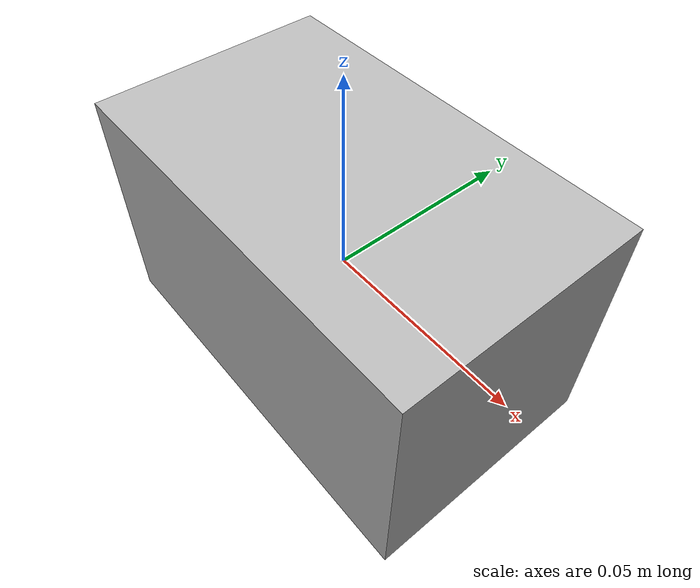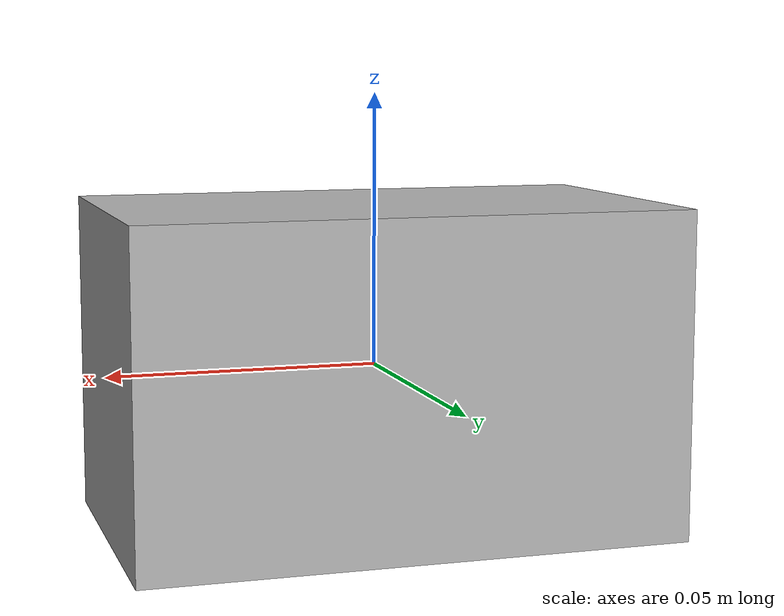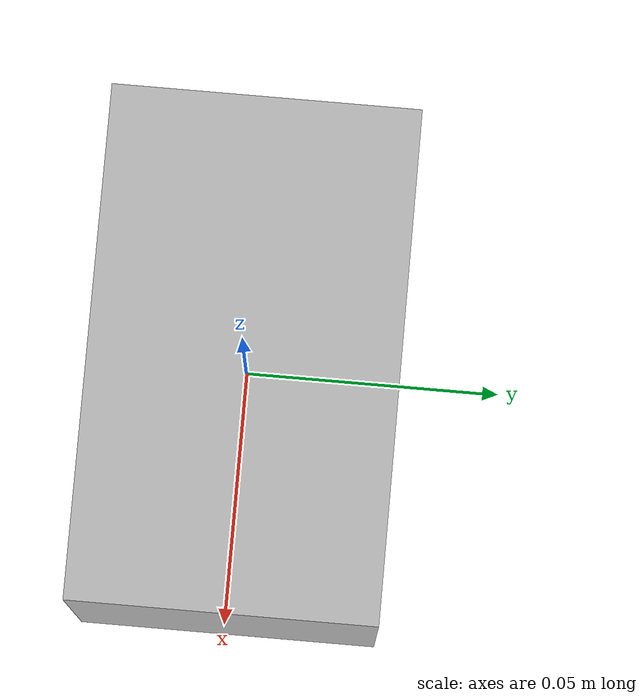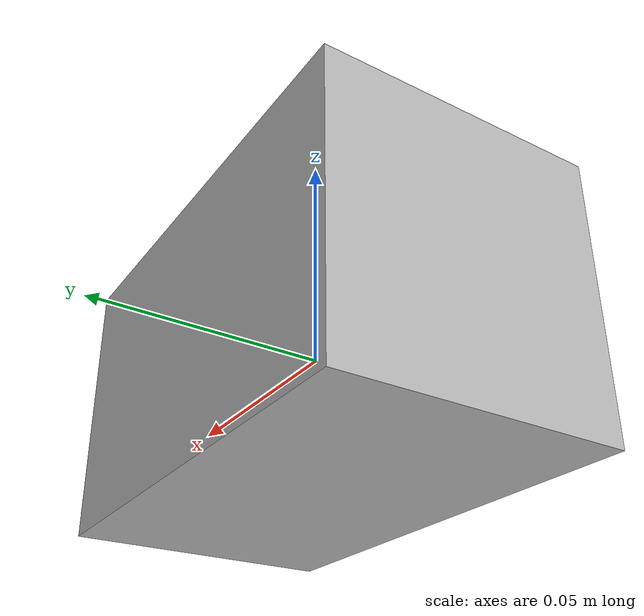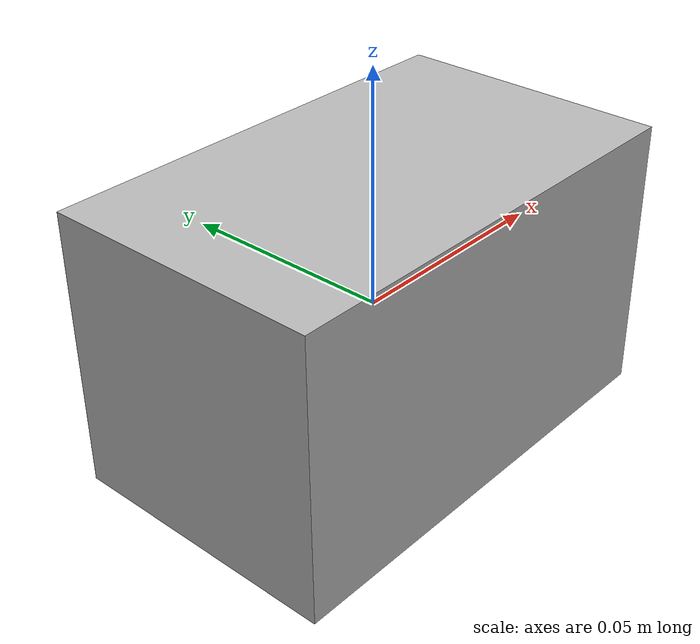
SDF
<?xml version="1.0" ?>
<sdf version="1.5">
  <model name="foggy_lidar">
    <link name="link">

      <inertial>
        <pose>0 0 0 0 0 0</pose>
        <mass>0.4</mass>
        <inertia>
          <ixx>4.5333e-4</ixx>
          <ixy>0</ixy>
          <ixz>0</ixz>
          <iyy>4.5333e-4</iyy>
          <iyz>0</iyz>
          <izz>2.4e-4</izz>
        </inertia>
      </inertial>

      <visual name="visual">
        <geometry>
          <box>
            <size>0.1 0.06 0.06</size>
          </box>
        </geometry>
      </visual>

      <sensor type="ray" name="mid360">
        <pose>-0.032 0 0.171 0 0 0</pose>
        <always_on>true</always_on>
        <visualize>true</visualize>
        <update_rate>10</update_rate>
        <!-- This ray plgin is only for visualization. -->
        <plugin name="mid360_plugin" filename="libros2_livox.so">
			<ray>
			  <scan>
				<horizontal>
				<samples>100</samples>
				<resolution>1</resolution>
				<min_angle>0.0</min_angle>
				<max_angle>6.28</max_angle>
				</horizontal>
				<vertical>
				<samples>360</samples>
				<resolution>1</resolution>
				<min_angle>-0.126</min_angle>
				<max_angle>0.963</max_angle>
				</vertical>
			  </scan>
			  <range>
				<min>0.1</min>
				<max>200.0</max>
				<resolution>0.002</resolution>
			  </range>
			  <noise>
				<type>gaussian</type>
				<mean>0.0</mean>
				<stddev>0.01</stddev>
			  </noise>
			</ray>
          <visualize>true</visualize>
		  <samples>40000</samples>
		  <downsample>1</downsample>
		  <csv_file_name>/home/victor/ws_sensor_combined/src/livox_laser_simulation_ros2/scan_mode/mid360.csv</csv_file_name>
		  <topic>mid360</topic>
        </plugin>
      </sensor>
    </link>
  </model>
</sdf>

<!-- vim: set et fenc= ff=unix sts=0 sw=2 ts=2 : -->
